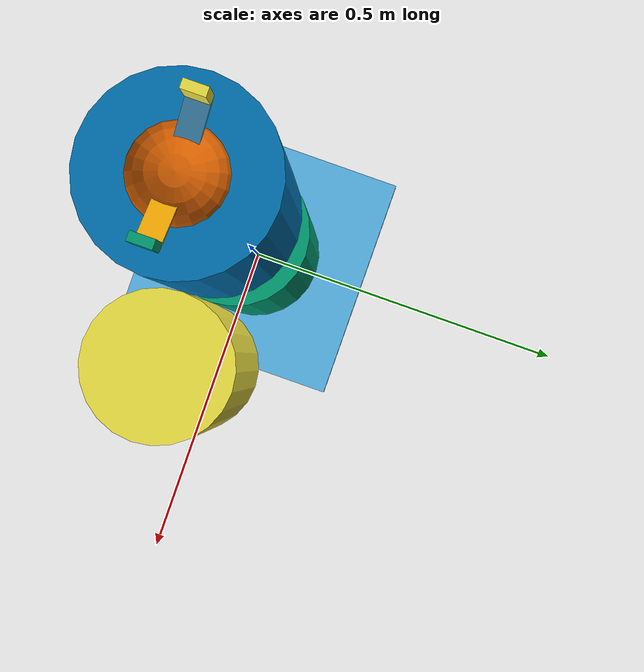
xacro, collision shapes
<?xml version="1.0"?>
<robot xmlns:xacro="http://www.ros.org/wiki/xacro" name="roboarm">

	<xacro:property name="base_mass" value="100.0"/>
	<xacro:property name="base_height" value="0.1"/>
	<xacro:property name="base_length" value="0.35"/>
	<xacro:property name="base_width" value="0.35"/>

	<xacro:property name="hip_mass" value="10.0"/>
	<xacro:property name="hip_length" value="1.0"/>
	<xacro:property name="hip_radius" value="0.1"/>

	<xacro:property name="shoulder_mass" value="5.0"/>
	<xacro:property name="shoulder_length" value="0.9"/>
	<xacro:property name="shoulder_radius" value="0.09"/>

	<xacro:property name="elbow_mass" value="5.0"/>
	<xacro:property name="elbow_length" value="0.9"/>
	<xacro:property name="elbow_radius" value="0.1"/>

	<xacro:property name="wrist_mass" value="1.0"/>
	<xacro:property name="wrist_radius" value="0.05"/>

	<xacro:property name="gripper_mass" value="0.1"/>
	<xacro:property name="gripper_height" value="0.01"/>
	<xacro:property name="gripper_length" value="0.1"/>
	<xacro:property name="gripper_width" value="0.025"/>

	<xacro:property name="kinect_height" value="0.072"/>
	<xacro:property name="kinect_length" value="0.276"/>
	<xacro:property name="kinect_width" value="0.073"/>

	<link name="world"/>
	<link name="base_link">
		<inertial>
			<mass value="${base_mass}"/>
			<origin xyz="0 0 ${base_height/2}" rpy="0 0 0"/>
			<inertia ixx="0.0"
					 ixy="0.0"
					 ixz="0.0"
					 iyy="0.0"
					 iyz="0.0"
					 izz="0.0"/>
		</inertial>

		<visual name="base_link_visual">
			<origin xyz="0 0 ${base_height/2}" rpy="0 0 0"/>
			<geometry>
				<box size="${base_length} ${base_width} ${base_height}"/>
			</geometry>
		</visual>

		<collision name="base_link_collision">
			<origin xyz="0 0 ${base_height/2}" rpy="0 0 0"/>
			<geometry>
				<box size="${base_length} ${base_width} ${base_height}"/>
			</geometry>
		</collision>
	</link>

	<link name="hip_link">
		<inertial>
			<mass value="${hip_mass}"/>
			<origin xyz="0 0 ${hip_length/2}" rpy="0 0 0"/>
			<inertia ixx="0.0"
					 ixy="0.0"
					 ixz="0.0"
					 iyy="0.0"
					 iyz="0.0"
					 izz="${hip_mass*hip_radius*hip_radius/2}"/>
		</inertial>

		<visual name="hip_link_visual">
			<origin xyz="0 0 ${hip_length/2}" rpy="0 0 0"/>
			<geometry>
				<cylinder length="${hip_length}" radius="${hip_radius}"/>
			</geometry>
		</visual>

		<collision name="hip_link_collision">
			<origin xyz="0 0 ${hip_length/2}" rpy="0 0 0"/>
			<geometry>
				<cylinder length="${hip_length}" radius="${hip_radius}"/>
			</geometry>
		</collision>
	</link>

	<link name="shoulder_link">
		<inertial>
			<mass value="${shoulder_mass}"/>
			<origin xyz="${hip_radius+shoulder_radius} 0 ${shoulder_length/2-shoulder_radius}" rpy="0 0 0"/>
			<inertia ixx="0.0"
					 ixy="0.0"
					 ixz="0.0"
					 iyy="0.0"
					 iyz="0.0"
					 izz="0.0"/>
		</inertial>

		<visual name="shoulder_link_visual">
			<origin xyz="${hip_radius+shoulder_radius} 0 ${shoulder_length/2-shoulder_radius}" rpy="0 0 0"/>
			<geometry>
				<cylinder length="${shoulder_length}" radius="${shoulder_radius}"/>
			</geometry>
		</visual>

		<collision name="shoulder_link_collision">
			<origin xyz="${hip_radius+shoulder_radius} 0 ${shoulder_length/2-shoulder_radius}" rpy="0 0 0"/>
			<geometry>
				<cylinder length="${shoulder_length}" radius="${shoulder_radius}"/>
			</geometry>
		</collision>
	</link>

	<link name="elbow_link">
		<inertial>
			<mass value="${elbow_mass}"/>
			<origin xyz="0 0 ${elbow_length/2-elbow_radius}" rpy="0 0 0"/>
			<inertia ixx="0.0"
					 ixy="0.0"
					 ixz="0.0"
					 iyy="0.0"
					 iyz="0.0"
					 izz="0.0"/>
		</inertial>

		<visual name="elbow_link_visual">
			<origin xyz="0 0 ${elbow_length/2-elbow_radius}" rpy="0 0 0"/>
			<geometry>
				<cylinder length="${elbow_length}" radius="${elbow_radius}"/>
			</geometry>
		</visual>

		<collision name="elbow_link_collision">
			<origin xyz="0 0 ${elbow_length/2-elbow_radius}" rpy="0 0 0"/>
			<geometry>
				<cylinder length="${elbow_length}" radius="${elbow_radius}"/>
			</geometry>
		</collision>
	</link>

	<link name="wrist_yaw_link">
		<inertial>
			<mass value="${wrist_mass}"/>
			<origin xyz="0 0 0" rpy="0 0 0"/>
			<inertia ixx="${2*wrist_mass*wrist_radius*wrist_radius/5}"
					 ixy="0.0"
					 ixz="0.0"
					 iyy="${2*wrist_mass*wrist_radius*wrist_radius/5}"
					 iyz="0.0"
					 izz="${2*wrist_mass*wrist_radius*wrist_radius/5}"/>
		</inertial>

		<visual name="wrist_yaw_link_visual">
			<origin xyz="0 0 0" rpy="0 0 0"/>
			<geometry>
				<sphere radius="${wrist_radius}"/>
			</geometry>
		</visual>

		<collision name="wrist_yaw_link_collision">
			<origin xyz="0 0 0" rpy="0 0 0"/>
			<geometry>
				<sphere radius="${wrist_radius}"/>
			</geometry>
		</collision>
	</link>

	<link name="wrist_pitch_link">
		<inertial>
			<mass value="${wrist_mass}"/>
			<origin xyz="0 0 0" rpy="0 0 0"/>
			<inertia ixx="${2*wrist_mass*wrist_radius*wrist_radius/5}"
					 ixy="0.0"
					 ixz="0.0"
					 iyy="${2*wrist_mass*wrist_radius*wrist_radius/5}"
					 iyz="0.0"
					 izz="${2*wrist_mass*wrist_radius*wrist_radius/5}"/>
		</inertial>
	</link>

	<link name="wrist_roll_link">
		<inertial>
			<mass value="${wrist_mass}"/>
			<origin xyz="0 0 0" rpy="0 0 0"/>
			<inertia ixx="${2*wrist_mass*wrist_radius*wrist_radius/5}"
					 ixy="0.0"
					 ixz="0.0"
					 iyy="${2*wrist_mass*wrist_radius*wrist_radius/5}"
					 iyz="0.0"
					 izz="${2*wrist_mass*wrist_radius*wrist_radius/5}"/>
		</inertial>
	</link>

	<link name="gripper_lower_right_link">
		<inertial>
			<mass value="${gripper_mass}"/>
			<origin xyz="0 0 0" rpy="0 0 0"/>
			<inertia ixx="0.0"
					 ixy="0.0"
					 ixz="0.0"
					 iyy="0.0"
					 iyz="0.0"
					 izz="0.0"/>
		</inertial>

		<visual name="gripper_lower_right_link_visual">
			<origin xyz="${gripper_length*cos(pi/4)/2} 0 ${gripper_length*sin(pi/4)/2}" rpy="0 ${pi/4} 0"/>
			<geometry>
				<box size="${gripper_height} ${gripper_width} ${gripper_length}"/>
			</geometry>
		</visual>

		<collision name="gripper_lower_right_link_collision">
			<origin xyz="${gripper_length*cos(pi/4)/2} 0 ${gripper_length*sin(pi/4)/2}" rpy="0 ${pi/4} 0"/>
			<geometry>
				<box size="${gripper_height} ${gripper_width} ${gripper_length}"/>
			</geometry>
		</collision>
	</link>

	<link name="gripper_lower_left_link">
		<inertial>
			<mass value="${gripper_mass}"/>
			<origin xyz="0 0 0" rpy="0 0 0"/>
			<inertia ixx="0.0"
					 ixy="0.0"
					 ixz="0.0"
					 iyy="0.0"
					 iyz="0.0"
					 izz="0.0"/>
		</inertial>

		<visual name="gripper_lower_left_link_visual">
			<origin xyz="${-gripper_length*cos(pi/4)/2} 0 ${gripper_length*sin(pi/4)/2}" rpy="0 ${-pi/4} 0"/>
			<geometry>
				<box size="${gripper_height} ${gripper_width} ${gripper_length}"/>
			</geometry>
		</visual>

		<collision name="gripper_lower_left_link_collision">
			<origin xyz="${-gripper_length*cos(pi/4)/2} 0 ${gripper_length*sin(pi/4)/2}" rpy="0 ${-pi/4} 0"/>
			<geometry>
				<box size="${gripper_height} ${gripper_width} ${gripper_length}"/>
			</geometry>
		</collision>
	</link>

	<link name="gripper_upper_right_link">
		<inertial>
			<mass value="${gripper_mass}"/>
			<origin xyz="0 0 0" rpy="0 0 0"/>
			<inertia ixx="0.0"
					 ixy="0.0"
					 ixz="0.0"
					 iyy="0.0"
					 iyz="0.0"
					 izz="0.0"/>
		</inertial>

		<visual name="gripper_upper_right_link_visual">
			<origin xyz="0 0 ${gripper_length/2}" rpy="0 0 0"/>
			<geometry>
				<box size="${gripper_height} ${gripper_width} ${gripper_length}"/>
			</geometry>
		</visual>

		<collision name="gripper_upper_right_link_collision">
			<origin xyz="0 0 ${gripper_length/2}" rpy="0 0 0"/>
			<geometry>
				<box size="${gripper_height} ${gripper_width} ${gripper_length}"/>
			</geometry>
		</collision>
	</link>

	<link name="gripper_upper_left_link">
		<inertial>
			<mass value="${gripper_mass}"/>
			<origin xyz="0 0 0" rpy="0 0 0"/>
			<inertia ixx="0.0"
					 ixy="0.0"
					 ixz="0.0"
					 iyy="0.0"
					 iyz="0.0"
					 izz="0.0"/>
		</inertial>

		<visual name="gripper_upper_left_link_visual">
			<origin xyz="0 0 ${gripper_length/2}" rpy="0 0 0"/>
			<geometry>
				<box size="${gripper_height} ${gripper_width} ${gripper_length}"/>
			</geometry>
		</visual>

		<collision name="gripper_upper_left_link_collision">
			<origin xyz="0 0 ${gripper_length/2}" rpy="0 0 0"/>
			<geometry>
				<box size="${gripper_height} ${gripper_width} ${gripper_length}"/>
			</geometry>
		</collision>
	</link>

	<link name="gripper"/>

	<link name="kinect_link">
		<inertial>
			<mass value="0.1"/>
			<origin xyz="0 0 0"/>
			<inertia ixx="0.0"
					 ixy="0.0"
					 ixz="0.0"
					 iyy="0.0"
					 iyz="0.0"
					 izz="0.0"/>
		</inertial>
		<visual>
			<origin xyz = "0 0 0"/>
			<geometry>
				<mesh filename="package://roboarm/meshes/kinect.dae"/>
			</geometry>
		</visual>
	</link>

	<joint name="world_joint" type="fixed">
		<parent link="world"/>
		<child link="base_link"/>
	</joint>

	<joint name="kinect_joint" type="revolute">
		<parent link="base_link"/>
		<child link="kinect_link"/>
		<origin xyz = "0 ${base_length/2} ${base_height+kinect_height/2+0.02}" rpy="0 0 ${pi/2}"/>
		<limit lower="-0.1" upper="0.1" effort="1.0" velocity="1.0"/>
	</joint>

	<joint name="hip_joint" type="continuous">
		<parent link="base_link"/>
		<child link="hip_link"/>
		<origin xyz="0 0 ${base_height}" rpy="0 0 0"/>
		<axis xyz="0 0 1"/>
	</joint>

	<joint name="shoulder_joint" type="revolute">
		<parent link="hip_link"/>
		<child link="shoulder_link"/>
		<origin xyz="0 0 ${hip_length-shoulder_radius}" rpy="0 0 0"/>
		<axis xyz="1 0 0"/>
		<limit lower="${-pi}" upper="${pi}" velocity="10.0" effort="10.0"/>
	</joint>

	<joint name="elbow_joint" type="revolute">
		<parent link="shoulder_link"/>
		<child link="elbow_link"/>
		<origin xyz="0 0 ${shoulder_length-elbow_radius}" rpy="0 0 0"/>
		<axis xyz="1 0 0"/>
		<limit lower="${-pi}" upper="${pi}" velocity="10.0" effort="10.0"/>
	</joint>

	<joint name="wrist_yaw_joint" type="revolute">
		<parent link="elbow_link"/>
		<child link="wrist_yaw_link"/>
		<origin xyz="0 0 ${elbow_length-elbow_radius}" rpy="0 0 0"/>
		<axis xyz="0 1 0"/>
		<limit lower="${-pi/2}" upper="${pi/2}" velocity="10.0" effort="10.0"/>
	</joint>

	<joint name="wrist_pitch_joint" type="revolute">
		<parent link="wrist_yaw_link"/>
		<child link="wrist_pitch_link"/>
		<origin xyz="0 0 0" rpy="0 0 0"/>
		<axis xyz="1 0 0"/>
		<limit lower="${-pi/2}" upper="${pi/2}" velocity="10.0" effort="10.0"/>
	</joint>

	<joint name="wrist_roll_joint" type="continuous">
		<parent link="wrist_pitch_link"/>
		<child link="wrist_roll_link"/>
		<origin xyz="0 0 0" rpy="0 0 0"/>
		<axis xyz="0 0 1"/>
	</joint>

	<joint name="gripper_lower_left_joint" type="revolute">
		<parent link="wrist_roll_link"/>
		<child link="gripper_lower_left_link"/>
		<origin xyz="0 0 0" rpy="0 0 0"/>
		<axis xyz="0 1 0"/>
		<limit lower="0.0" upper="${pi/5}" velocity="1.0" effort="10.0"/>
	</joint>

	<joint name="gripper_lower_right_joint" type="revolute">
		<parent link="wrist_roll_link"/>
		<child link="gripper_lower_right_link"/>
		<origin xyz="0 0 0" rpy="0 0 0"/>
		<axis xyz="0 1 0"/>
		<limit lower="${-pi/5}" upper="0.0" velocity="1.0" effort="10.0"/>
	</joint>

	<joint name="gripper_upper_left_joint" type="revolute">
		<parent link="gripper_lower_left_link"/>
		<child link="gripper_upper_left_link"/>
		<origin xyz="${-gripper_length*cos(pi/4)} 0 ${gripper_length*sin(pi/4)}" rpy="0 0 0"/>
		<axis xyz="0 1 0"/>
		<limit lower="${-pi/5}" upper="0.0" velocity="1.0" effort="10.0"/>
	</joint>

	<joint name="gripper_upper_right_joint" type="revolute">
		<parent link="gripper_lower_right_link"/>
		<child link="gripper_upper_right_link"/>
		<origin xyz="${gripper_length*cos(pi/4)} 0 ${gripper_length*sin(pi/4)}" rpy="0 0 0"/>
		<axis xyz="0 1 0"/>
		<limit lower="0.0" upper="${pi/5}" velocity="1.0" effort="10.0"/>
	</joint>

	<joint name="gripper_joint" type="fixed">
		<parent link="wrist_roll_link"/>
		<child link="gripper"/>
	</joint>

	<transmission name="hip_transmission">
		<type>transmission_interface/SimpleTransmission</type>

		<joint name="hip_joint">
			<hardwareInterface>hardware_interface/PositionJointInterface</hardwareInterface>
		</joint>

		<actuator name="hip_motor">
			<hardwareInterface>hardware_interface/PositionJointInterface</hardwareInterface>
			<mechanicalReduction>1</mechanicalReduction>
		</actuator>
	</transmission>

	<transmission name="shoulder_transmission">
		<type>transmission_interface/SimpleTransmission</type>

		<joint name="shoulder_joint">
			<hardwareInterface>hardware_interface/PositionJointInterface</hardwareInterface>
		</joint>

		<actuator name="shoulder_motor">
			<hardwareInterface>hardware_interface/PositionJointInterface</hardwareInterface>
			<mechanicalReduction>1</mechanicalReduction>
		</actuator>
	</transmission>

	<transmission name="elbow_transmission">
		<type>transmission_interface/SimpleTransmission</type>

		<joint name="elbow_joint">
			<hardwareInterface>hardware_interface/PositionJointInterface</hardwareInterface>
		</joint>

		<actuator name="elbow_motor">
			<hardwareInterface>hardware_interface/PositionJointInterface</hardwareInterface>
			<mechanicalReduction>1</mechanicalReduction>
		</actuator>
	</transmission>

	<transmission name="wrist_yaw_transmission">
		<type>transmission_interface/SimpleTransmission</type>

		<joint name="wrist_yaw_joint">
			<hardwareInterface>hardware_interface/PositionJointInterface</hardwareInterface>
		</joint>

		<actuator name="wrist_yaw_motor">
			<hardwareInterface>hardware_interface/PositionJointInterface</hardwareInterface>
			<mechanicalReduction>1</mechanicalReduction>
		</actuator>
	</transmission>

	<transmission name="wrist_pitch_transmission">
		<type>transmission_interface/SimpleTransmission</type>

		<joint name="wrist_pitch_joint">
			<hardwareInterface>hardware_interface/PositionJointInterface</hardwareInterface>
		</joint>

		<actuator name="wrist_pitch_motor">
			<hardwareInterface>hardware_interface/PositionJointInterface</hardwareInterface>
			<mechanicalReduction>1</mechanicalReduction>
		</actuator>
	</transmission>

	<transmission name="wrist_roll_transmission">
		<type>transmission_interface/SimpleTransmission</type>

		<joint name="wrist_roll_joint">
			<hardwareInterface>hardware_interface/PositionJointInterface</hardwareInterface>
		</joint>

		<actuator name="wrist_roll_motor">
			<hardwareInterface>hardware_interface/PositionJointInterface</hardwareInterface>
			<mechanicalReduction>1</mechanicalReduction>
		</actuator>
	</transmission>

	<transmission name="gripper_lower_left_transmission">
		<type>transmission_interface/SimpleTransmission</type>

		<joint name="gripper_lower_left_joint">
			<hardwareInterface>hardware_interface/PositionJointInterface</hardwareInterface>
		</joint>

		<actuator name="gripper_lower_left_motor">
			<hardwareInterface>hardware_interface/PositionJointInterface</hardwareInterface>
			<mechanicalReduction>1</mechanicalReduction>
		</actuator>
	</transmission>

	<transmission name="gripper_lower_right_transmission">
		<type>transmission_interface/SimpleTransmission</type>

		<joint name="gripper_lower_right_joint">
			<hardwareInterface>hardware_interface/PositionJointInterface</hardwareInterface>
		</joint>

		<actuator name="gripper_lower_right_motor">
			<hardwareInterface>hardware_interface/PositionJointInterface</hardwareInterface>
			<mechanicalReduction>1</mechanicalReduction>
		</actuator>
	</transmission>

	<transmission name="gripper_upper_left_transmission">
		<type>transmission_interface/SimpleTransmission</type>

		<joint name="gripper_upper_left_joint">
			<hardwareInterface>hardware_interface/PositionJointInterface</hardwareInterface>
		</joint>

		<actuator name="gripper_upper_left_motor">
			<hardwareInterface>hardware_interface/PositionJointInterface</hardwareInterface>
			<mechanicalReduction>1</mechanicalReduction>
		</actuator>
	</transmission>

	<transmission name="gripper_upper_right_transmission">
		<type>transmission_interface/SimpleTransmission</type>

		<joint name="gripper_upper_right_joint">
			<hardwareInterface>hardware_interface/PositionJointInterface</hardwareInterface>
		</joint>

		<actuator name="gripper_upper_right_motor">
			<hardwareInterface>hardware_interface/PositionJointInterface</hardwareInterface>
			<mechanicalReduction>1</mechanicalReduction>
		</actuator>
	</transmission>

	<gazebo>
		<static>false</static>

		<plugin name="gazebo_ros_control" filename="libgazebo_ros_control.so">
			<robotNamespace>/roboarm</robotNamespace>
		</plugin>

		<plugin name="joint_state_publisher" filename="libgazebo_ros_joint_state_publisher.so">
			<jointName>hip_joint, shoulder_joint, elbow_joint, wrist_yaw_joint, wrist_pitch_joint, wrist_roll_joint,
				gripper_lower_left_joint, gripper_lower_right_joint, gripper_upper_left_joint, gripper_upper_right_joint</jointName>
			<robotNamespace>/roboarm</robotNamespace>
		</plugin>

		<plugin name = "lower_right_mimic_joint" filename = "libroboticsgroup_gazebo_mimic_joint_plugin.so">
			<robotNamespace> /roboarm </robotNamespace>
			<joint> gripper_lower_left_joint </joint>
			<mimicJoint> gripper_lower_right_joint </mimicJoint>
			<multiplier> -1 </multiplier>
			<offset> 0 </offset>
		</plugin>

		<plugin name = "upper_left_mimic_joint" filename = "libroboticsgroup_gazebo_mimic_joint_plugin.so">
			<robotNamespace> /roboarm </robotNamespace>
			<joint> gripper_lower_left_joint </joint>
			<mimicJoint> gripper_upper_left_joint </mimicJoint>
			<multiplier> -1 </multiplier>
			<offset> 0 </offset>
		</plugin>

		<plugin name = "upper_right_mimic_joint" filename = "libroboticsgroup_gazebo_mimic_joint_plugin.so">
			<robotNamespace> /roboarm </robotNamespace>
			<joint> gripper_lower_left_joint </joint>
			<mimicJoint> gripper_upper_right_joint </mimicJoint>
			<multiplier> 1 </multiplier>
			<offset> 0 </offset>
		</plugin>

		<plugin name="gazebo_grasp_fix" filename="libgazebo_grasp_fix.so">
			<arm>
				<arm_name>roboarm</arm_name>
				<palm_link> wrist_roll_link  </palm_link>
				<gripper_link> gripper_lower_left_link </gripper_link>
				<gripper_link> gripper_lower_right_link </gripper_link>
				<gripper_link> gripper_upper_left_link </gripper_link>
				<gripper_link> gripper_upper_right_link </gripper_link>
			</arm>
			<forces_angle_tolerance>100</forces_angle_tolerance>
			<update_rate>40</update_rate>
			<grip_count_threshold>4</grip_count_threshold>
			<max_grip_count>8</max_grip_count>
			<release_tolerance>0.005</release_tolerance>
			<disable_collisions_on_attach>false</disable_collisions_on_attach>
			<contact_topic>__default_topic__</contact_topic>
		</plugin>
	</gazebo>

	<gazebo reference="kinect_link">
		<sensor type="depth" name="depth_sensor">
			<update_rate>30.0</update_rate>
			<camera name="kinect">
				<horizontal_fov>1.3962634</horizontal_fov>
				<image>
					<width>1280</width>
					<height>1024</height>
					<format>R8G8B8</format>
				</image>
				<clip>
					<near>0.02</near>
					<far>300</far>
				</clip>
				<noise>
					<type>gaussian</type>
					<mean>0.0</mean>
					<stddev>0.007</stddev>
				</noise>
			</camera>

			<plugin name="kinect" filename="libgazebo_ros_openni_kinect.so">
				<baseline>0.2</baseline>
				<alwaysOn>true</alwaysOn>
				<updateRate>30.0</updateRate>
				<cameraName>kinect</cameraName>
				<imageTopicName>/kinect/depth/image_raw</imageTopicName>
				<cameraInfoTopicName>/kinect/depth/camera_info</cameraInfoTopicName>
				<depthImageTopicName>/kinect/depth/image_raw</depthImageTopicName>
				<depthImageInfoTopicName>/kinect/depth/camera_info</depthImageInfoTopicName>
				<pointCloudTopicName>/kinect/depth/points</pointCloudTopicName>
				<frameName>base_link</frameName>
				<pointCloudCutoff>0.5</pointCloudCutoff>
				<distortionK1>0.00000001</distortionK1>
				<distortionK2>0.00000001</distortionK2>
				<distortionK3>0.00000001</distortionK3>
				<distortionT1>0.00000001</distortionT1>
				<distortionT2>0.00000001</distortionT2>
				<CxPrime>0</CxPrime>
				<Cx>0</Cx>
				<Cy>0</Cy>
				<focalLength>0</focalLength>
				<hackBaseline>0</hackBaseline>
			</plugin>
		</sensor>
	</gazebo>

</robot>
